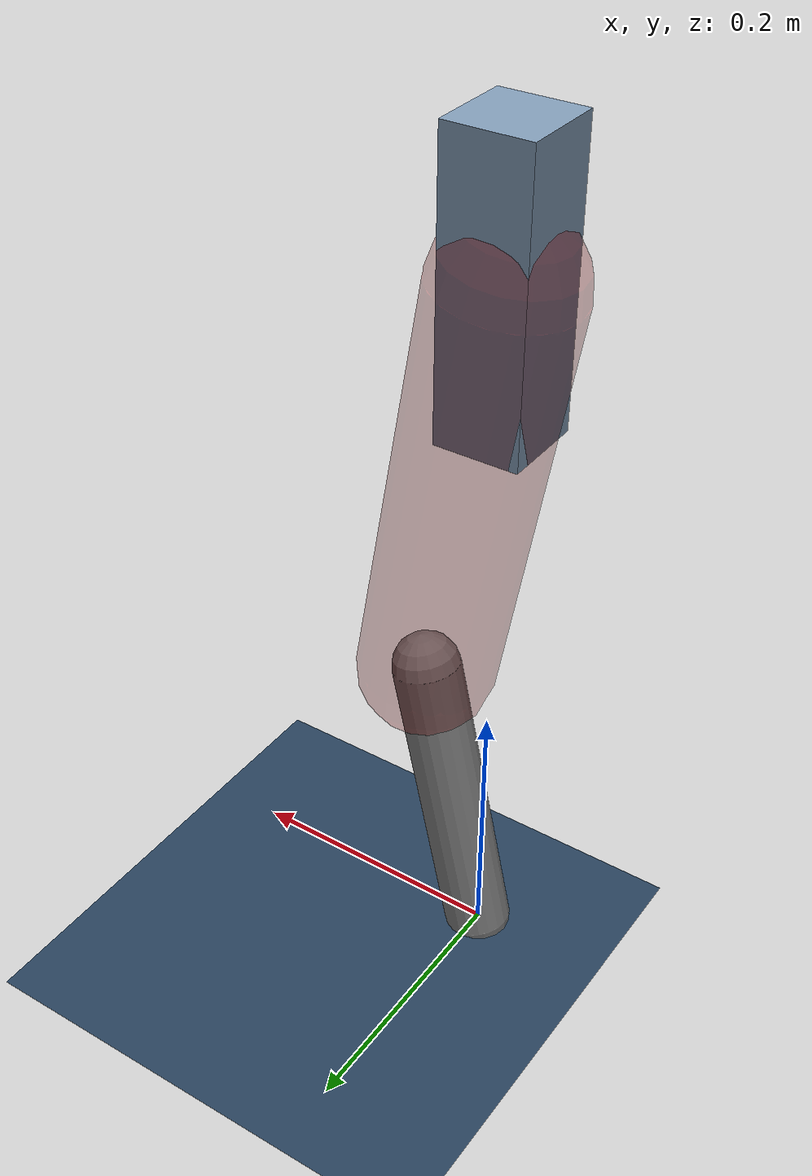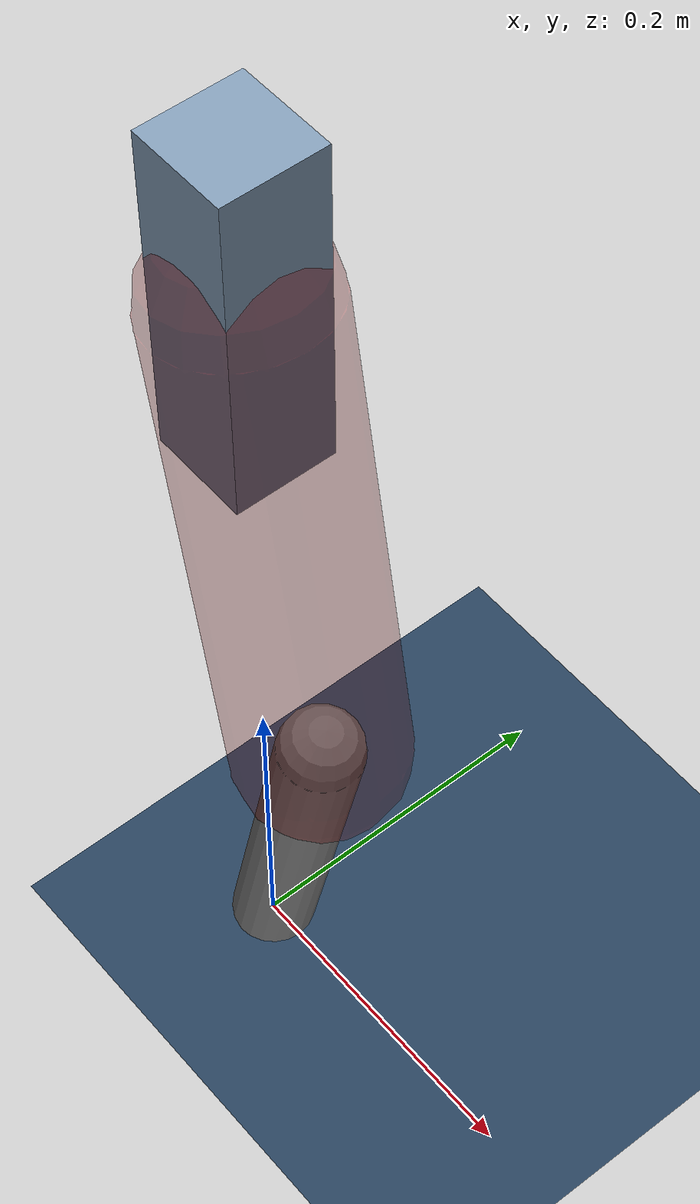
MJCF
<mujoco model="Hopper2D">
	<compiler inertiafromgeom="true" angle="radian" />
	<option timestep="0.001" integrator="implicit" cone="elliptic" solver="Newton" tolerance="1e-10" />

	<default>
		<geom contype="1" conaffinity="1" condim="3" friction="2 0.005 0.0001" solref="0.005 1" />
		<joint limited="true" damping="0.1" />
	</default>

	<asset>
		<texture name="skybox" type="skybox" builtin="gradient" rgb1=".4 .6 .8" rgb2="0 0 0" width="800" height="800" />
		<texture name="grid" type="2d" builtin="checker" rgb1=".1 .2 .3" rgb2=".2 .3 .4" width="300" height="300" mark="edge" markrgb=".2 .3 .4" />
		<material name="ground" texture="grid" texrepeat="1 1" texuniform="true" reflectance="0.1" />
		<material name="leg" rgba="0.5 0.6 0.7 1" />
	</asset>

	<worldbody>

		<geom name="floor" type="plane" size="5 5 0.25" material="ground" />

		<light directional="false" diffuse="0.8 0.8 0.8" specular="0.3 0.3 0.3" pos="0 0 2" dir="0 0 -1" />
		<light mode="targetbodycom" target="base" directional="false" diffuse="0.8 0.8 0.8" specular="0.3 0.3 0.3" pos="0 0 2" dir="0 0 -1" />

		<camera name="fixed" pos="0 -2 1" xyaxes="1 0 0 0 0 1" />
		<camera name="tracking" mode="trackcom" pos="0 -3 1" />

		<body name="root" pos="0 0 0.5299606606073671">
			<joint name="slide_x" type="slide" axis="1 0 0" range="-100 100" />
			<joint name="slide_z" type="slide" axis="0 0 1" range="0 10" />

			<body name="base" pos="0 0 0">
				<geom name="torso" type="box" size="0.03 0.03 0.1" mass="2.2750000000000004" material="leg" />

				<body name="link1" pos="0 0 0" euler="0 1.4029865984009056 0">
					<joint type="hinge" axis="0 -1 0" pos="0 0 0" name="hinge1" limited="true" range="-3.14 3.14" stiffness="0" damping="0.1" />
					<geom name="thigh" type="capsule" fromto="0 0 0 0.3066664842931325 0 0" size="0.05" rgba="0.5 0 0 0.3" mass="1.0067995075914578" />

					<body name="link2" pos="0.3066664842931325 0 0" euler="0 0.3891659764064203 0">
						<joint type="hinge" axis="0 -1 0" pos="0 0 0" name="hinge2" limited="true" range="-3.14 3.14" stiffness="0" damping="0.1" />
						<geom name="shank" type="capsule" fromto="0 0 0 0.23329417631423463 0 0" size="0.025" mass="0.4287353410513877" />

					</body>
				</body>
			</body>
		</body>
	</worldbody>

	<actuator>
		<motor name="torque1" joint="hinge1" ctrlrange="-61.022416780579455 61.022416780579455" ctrllimited="true" gear="1" />
		<motor name="torque2" joint="hinge2" ctrlrange="-101.69949871991142 101.69949871991142" ctrllimited="true" gear="1" />
	</actuator>
</mujoco>
